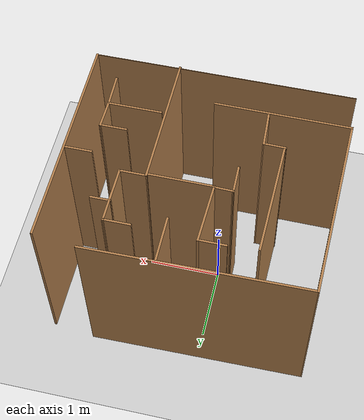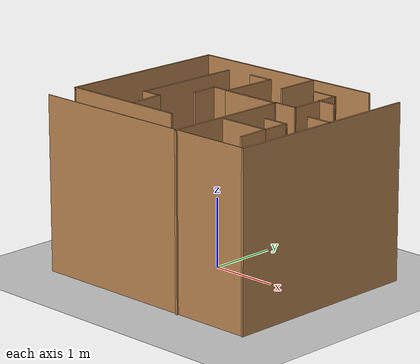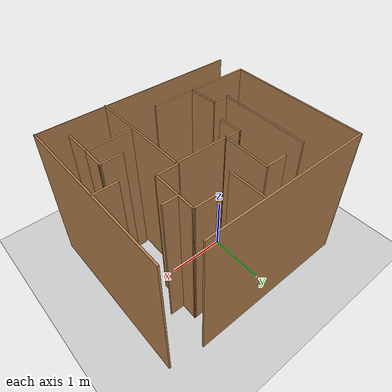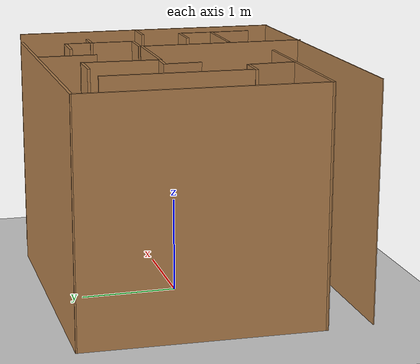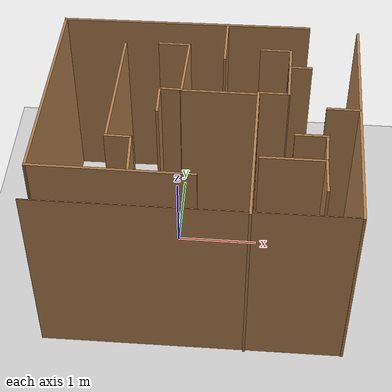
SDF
<sdf version="1.7">
 <world name="default">
  <light name="sun" type="directional">
   <pose>0 0 10 0 -0 0</pose>
   <diffuse>0.8 0.8 0.8 1</diffuse>
   <specular>0.2 0.2 0.2 1</specular>
   <attenuation>
    <range>1000</range>
    <constant>0.9</constant>
    <linear>0.01</linear>
    <quadratic>0.001</quadratic>
   </attenuation>
   <direction>-0.5 0.1 -0.9</direction>
   <spot><inner_angle>0</inner_angle><outer_angle>0</outer_angle><falloff>0</falloff></spot>
  </light>
  <model name="ground_plane">
   <static>1</static>
   <link name="link">
    <collision name="collision">
     <geometry><plane><normal>0 0 1</normal><size>100 100</size></plane></geometry>
     <surface>
      <contact><collide_bitmask>65535</collide_bitmask></contact>
      <friction><ode><mu>100</mu><mu2>50</mu2></ode></friction>
     </surface>
    </collision>
    <visual name="visual">
     <cast_shadows>0</cast_shadows>
     <geometry><plane><normal>0 0 1</normal><size>100 100</size></plane></geometry>
     <material>
      <script><uri>file://media/materials/scripts/gazebo.material</uri><name>Gazebo/Grey</name></script>
     </material>
    </visual>
   </link>
  </model>
  <gravity>0 0 -9.8</gravity>
  <magnetic_field>6e-06 2.3e-05 -4.2e-05</magnetic_field>
  <atmosphere type="adiabatic"/>
  <physics type="ode">
   <max_step_size>0.001</max_step_size>
   <real_time_factor>1</real_time_factor>
   <real_time_update_rate>1000</real_time_update_rate>
  </physics>
  <scene><ambient>0.4 0.4 0.4 1</ambient><background>0.7 0.7 0.7 1</background><shadows>1</shadows></scene>
  <spherical_coordinates>
   <surface_model>EARTH_WGS84</surface_model>
   <latitude_deg>0</latitude_deg>
   <longitude_deg>0</longitude_deg>
   <elevation>0</elevation>
   <heading_deg>0</heading_deg>
  </spherical_coordinates>
  <model name="Untitled">
   <pose>0.290726 -0.164941 0 0 -0 0</pose>
   <link name="Wall_10">
    <collision name="Wall_10_Collision">
     <geometry><box><size>0.38 0.03 2.5</size></box></geometry>
     <pose>0 0 1.25 0 -0 0</pose>
    </collision>
    <visual name="Wall_10_Visual">
     <pose>0 0 1.25 0 -0 0</pose>
     <geometry><box><size>0.38 0.03 2.5</size></box></geometry>
     <material>
      <script><uri>file://media/materials/scripts/gazebo.material</uri><name>Gazebo/Wood</name></script>
      <ambient>1 1 1 1</ambient>
     </material>
     <meta><layer>0</layer></meta>
    </visual>
    <pose>0.824274 0.314941 0 0 -0 0</pose>
   </link>
   <link name="Wall_12">
    <collision name="Wall_12_Collision">
     <geometry><box><size>0.790066 0.03 2.5</size></box></geometry>
     <pose>0 0 1.25 0 -0 0</pose>
    </collision>
    <visual name="Wall_12_Visual">
     <pose>0 0 1.25 0 -0 0</pose>
     <geometry><box><size>0.790066 0.03 2.5</size></box></geometry>
     <material>
      <script><uri>file://media/materials/scripts/gazebo.material</uri><name>Gazebo/Wood</name></script>
      <ambient>1 1 1 1</ambient>
     </material>
     <meta><layer>0</layer></meta>
    </visual>
    <pose>1.00427 0.694941 0 0 -0 1.55764</pose>
   </link>
   <link name="Wall_13">
    <collision name="Wall_13_Collision">
     <geometry><box><size>0.38 0.03 2.5</size></box></geometry>
     <pose>0 0 1.25 0 -0 0</pose>
    </collision>
    <visual name="Wall_13_Visual">
     <pose>0 0 1.25 0 -0 0</pose>
     <geometry><box><size>0.38 0.03 2.5</size></box></geometry>
     <material>
      <script><uri>file://media/materials/scripts/gazebo.material</uri><name>Gazebo/Wood</name></script>
      <ambient>1 1 1 1</ambient>
     </material>
     <meta><layer>0</layer></meta>
    </visual>
    <pose>0.834274 1.07494 0 0 -0 3.14159</pose>
   </link>
   <link name="Wall_16">
    <collision name="Wall_16_Collision">
     <geometry><box><size>0.28 0.03 2.5</size></box></geometry>
     <pose>0 0 1.25 0 -0 0</pose>
    </collision>
    <visual name="Wall_16_Visual">
     <pose>0 0 1.25 0 -0 0</pose>
     <geometry><box><size>0.28 0.03 2.5</size></box></geometry>
     <material>
      <script><uri>file://media/materials/scripts/gazebo.material</uri><name>Gazebo/Wood</name></script>
      <ambient>1 1 1 1</ambient>
     </material>
     <meta><layer>0</layer></meta>
    </visual>
    <pose>1.12427 0.784941 0 0 -0 0</pose>
   </link>
   <link name="Wall_18">
    <collision name="Wall_18_Collision">
     <geometry><box><size>3.01027 0.03 2.5</size></box></geometry>
     <pose>0 0 1.25 0 -0 0</pose>
    </collision>
    <visual name="Wall_18_Visual">
     <pose>0 0 1.25 0 -0 0</pose>
     <geometry><box><size>3.01027 0.03 2.5</size></box></geometry>
     <material>
      <script><uri>file://media/materials/scripts/gazebo.material</uri><name>Gazebo/Wood</name></script>
      <ambient>1 1 1 1</ambient>
     </material>
     <meta><layer>0</layer></meta>
    </visual>
    <pose>-0.270726 1.50494 0 0 -0 -3.12817</pose>
   </link>
   <link name="Wall_19">
    <collision name="Wall_19_Collision">
     <geometry><box><size>2.52786 0.03 2.5</size></box></geometry>
     <pose>0 0 1.25 0 -0 0</pose>
    </collision>
    <visual name="Wall_19_Visual">
     <pose>0 0 1.25 0 -0 0</pose>
     <geometry><box><size>2.52786 0.03 2.5</size></box></geometry>
     <material>
      <script><uri>file://media/materials/scripts/gazebo.material</uri><name>Gazebo/Wood</name></script>
      <ambient>1 1 1 1</ambient>
     </material>
     <meta><layer>0</layer></meta>
    </visual>
    <pose>-1.78486 0.236245 0 0 -0 -1.59012</pose>
   </link>
   <link name="Wall_20">
    <collision name="Wall_20_Collision">
     <geometry><box><size>1.87366 0.03 2.5</size></box></geometry>
     <pose>0 0 1.25 0 -0 0</pose>
    </collision>
    <visual name="Wall_20_Visual">
     <pose>0 0 1.25 0 -0 0</pose>
     <geometry><box><size>1.87366 0.03 2.5</size></box></geometry>
     <material>
      <script><uri>file://media/materials/scripts/gazebo.material</uri><name>Gazebo/Wood</name></script>
      <ambient>1 1 1 1</ambient>
     </material>
     <meta><layer>0</layer></meta>
    </visual>
    <pose>-0.887248 -1.0168 0 0 -0 -0.004717</pose>
   </link>
   <link name="Wall_22">
    <collision name="Wall_22_Collision">
     <geometry><box><size>0.526772 0.03 2.5</size></box></geometry>
     <pose>0 0 1.25 0 -0 0</pose>
    </collision>
    <visual name="Wall_22_Visual">
     <pose>0 0 1.25 0 -0 0</pose>
     <geometry><box><size>0.526772 0.03 2.5</size></box></geometry>
     <material>
      <script><uri>file://media/materials/scripts/gazebo.material</uri><name>Gazebo/Wood</name></script>
      <ambient>1 1 1 1</ambient>
     </material>
     <meta><layer>0</layer></meta>
    </visual>
    <pose>-0.708987 -0.755711 0 0 -0 1.62333</pose>
   </link>
   <link name="Wall_23">
    <collision name="Wall_23_Collision">
     <geometry><box><size>0.308307 0.03 2.5</size></box></geometry>
     <pose>0 0 1.25 0 -0 0</pose>
    </collision>
    <visual name="Wall_23_Visual">
     <pose>0 0 1.25 0 -0 0</pose>
     <geometry><box><size>0.308307 0.03 2.5</size></box></geometry>
     <material>
      <script><uri>file://media/materials/scripts/gazebo.material</uri><name>Gazebo/Wood</name></script>
      <ambient>1 1 1 1</ambient>
     </material>
     <meta><layer>0</layer></meta>
    </visual>
    <pose>-0.869856 -0.505125 0 0 -0 3.12331</pose>
   </link>
   <link name="Wall_24">
    <collision name="Wall_24_Collision">
     <geometry><box><size>1.60413 0.03 2.5</size></box></geometry>
     <pose>0 0 1.25 0 -0 0</pose>
    </collision>
    <visual name="Wall_24_Visual">
     <pose>0 0 1.25 0 -0 0</pose>
     <geometry><box><size>1.60413 0.03 2.5</size></box></geometry>
     <material>
      <script><uri>file://media/materials/scripts/gazebo.material</uri><name>Gazebo/Wood</name></script>
      <ambient>1 1 1 1</ambient>
     </material>
     <meta><layer>0</layer></meta>
    </visual>
    <pose>-0.987248 0.284375 0 0 -0 1.55422</pose>
   </link>
   <link name="Wall_26">
    <collision name="Wall_26_Collision">
     <geometry><box><size>0.75 0.03 2.5</size></box></geometry>
     <pose>0 0 1.25 0 -0 0</pose>
    </collision>
    <visual name="Wall_26_Visual">
     <pose>0 0 1.25 0 -0 0</pose>
     <geometry><box><size>0.75 0.03 2.5</size></box></geometry>
     <material>
      <script><uri>file://media/materials/scripts/gazebo.material</uri><name>Gazebo/Wood</name></script>
      <ambient>1 1 1 1</ambient>
     </material>
     <meta><layer>0</layer></meta>
    </visual>
    <pose>1.06927 -0.715059 0 0 -0 0</pose>
   </link>
   <link name="Wall_27">
    <collision name="Wall_27_Collision">
     <geometry><box><size>0.465322 0.03 2.5</size></box></geometry>
     <pose>0 0 1.25 0 -0 0</pose>
    </collision>
    <visual name="Wall_27_Visual">
     <pose>0 0 1.25 0 -0 0</pose>
     <geometry><box><size>0.465322 0.03 2.5</size></box></geometry>
     <material>
      <script><uri>file://media/materials/scripts/gazebo.material</uri><name>Gazebo/Wood</name></script>
      <ambient>1 1 1 1</ambient>
     </material>
     <meta><layer>0</layer></meta>
    </visual>
    <pose>1.43406 -0.932668 0 0 -0 -1.54882</pose>
   </link>
   <link name="Wall_29">
    <collision name="Wall_29_Collision">
     <geometry><box><size>0.406209 0.03 2.5</size></box></geometry>
     <pose>0 0 1.25 0 -0 0</pose>
    </collision>
    <visual name="Wall_29_Visual">
     <pose>0 0 1.25 0 -0 0</pose>
     <geometry><box><size>0.406209 0.03 2.5</size></box></geometry>
     <material>
      <script><uri>file://media/materials/scripts/gazebo.material</uri><name>Gazebo/Wood</name></script>
      <ambient>1 1 1 1</ambient>
     </material>
     <meta><layer>0</layer></meta>
    </visual>
    <pose>1.43427 -0.527059 0 0 -0 1.54421</pose>
   </link>
   <link name="Wall_32">
    <collision name="Wall_32_Collision">
     <geometry><box><size>0.39 0.03 2.5</size></box></geometry>
     <pose>0 0 1.25 0 -0 0</pose>
    </collision>
    <visual name="Wall_32_Visual">
     <pose>0 0 1.25 0 -0 0</pose>
     <geometry><box><size>0.39 0.03 2.5</size></box></geometry>
     <material>
      <script><uri>file://media/materials/scripts/gazebo.material</uri><name>Gazebo/Wood</name></script>
      <ambient>1 1 1 1</ambient>
     </material>
     <meta><layer>0</layer></meta>
    </visual>
    <pose>1.61927 0.104941 0 0 -0 3.14159</pose>
   </link>
   <link name="Wall_34">
    <collision name="Wall_34_Collision">
     <geometry><box><size>0.63 0.03 2.5</size></box></geometry>
     <pose>0 0 1.25 0 -0 0</pose>
    </collision>
    <visual name="Wall_34_Visual">
     <pose>0 0 1.25 0 -0 0</pose>
     <geometry><box><size>0.63 0.03 2.5</size></box></geometry>
     <material>
      <script><uri>file://media/materials/scripts/gazebo.material</uri><name>Gazebo/Wood</name></script>
      <ambient>1 1 1 1</ambient>
     </material>
     <meta><layer>0</layer></meta>
    </visual>
    <pose>0.229274 1.18494 0 0 -0 -1.5708</pose>
   </link>
   <link name="Wall_36">
    <collision name="Wall_36_Collision">
     <geometry><box><size>0.38 0.03 2.5</size></box></geometry>
     <pose>0 0 1.25 0 -0 0</pose>
    </collision>
    <visual name="Wall_36_Visual">
     <pose>0 0 1.25 0 -0 0</pose>
     <geometry><box><size>0.38 0.03 2.5</size></box></geometry>
     <material>
      <script><uri>file://media/materials/scripts/gazebo.material</uri><name>Gazebo/Wood</name></script>
      <ambient>1 1 1 1</ambient>
     </material>
     <meta><layer>0</layer></meta>
    </visual>
    <pose>-0.389639 1.10624 0 0 -0 0</pose>
   </link>
   <link name="Wall_37">
    <collision name="Wall_37_Collision">
     <geometry><box><size>0.83654 0.03 2.5</size></box></geometry>
     <pose>0 0 1.25 0 -0 0</pose>
    </collision>
    <visual name="Wall_37_Visual">
     <pose>0 0 1.25 0 -0 0</pose>
     <geometry><box><size>0.83654 0.03 2.5</size></box></geometry>
     <material>
      <script><uri>file://media/materials/scripts/gazebo.material</uri><name>Gazebo/Wood</name></script>
      <ambient>1 1 1 1</ambient>
     </material>
     <meta><layer>0</layer></meta>
    </visual>
    <pose>-0.220509 0.703419 0 0 -0 -1.60694</pose>
   </link>
   <link name="Wall_38">
    <collision name="Wall_38_Collision">
     <geometry><box><size>0.281743 0.03 2.5</size></box></geometry>
     <pose>0 0 1.25 0 -0 0</pose>
    </collision>
    <visual name="Wall_38_Visual">
     <pose>0 0 1.25 0 -0 0</pose>
     <geometry><box><size>0.281743 0.03 2.5</size></box></geometry>
     <material>
      <script><uri>file://media/materials/scripts/gazebo.material</uri><name>Gazebo/Wood</name></script>
      <ambient>1 1 1 1</ambient>
     </material>
     <meta><layer>0</layer></meta>
    </visual>
    <pose>-0.352195 0.304297 0 0 -0 3.11216</pose>
   </link>
   <link name="Wall_39">
    <collision name="Wall_39_Collision">
     <geometry><box><size>0.403056 0.03 2.5</size></box></geometry>
     <pose>0 0 1.25 0 -0 0</pose>
    </collision>
    <visual name="Wall_39_Visual">
     <pose>0 0 1.25 0 -0 0</pose>
     <geometry><box><size>0.403056 0.03 2.5</size></box></geometry>
     <material>
      <script><uri>file://media/materials/scripts/gazebo.material</uri><name>Gazebo/Wood</name></script>
      <ambient>1 1 1 1</ambient>
     </material>
     <meta><layer>0</layer></meta>
    </visual>
    <pose>-0.48263 0.121688 0 0 -0 -1.54891</pose>
   </link>
   <link name="Wall_41">
    <collision name="Wall_41_Collision">
     <geometry><box><size>0.91 0.03 2.5</size></box></geometry>
     <pose>0 0 1.25 0 -0 0</pose>
    </collision>
    <visual name="Wall_41_Visual">
     <pose>0 0 1.25 0 -0 0</pose>
     <geometry><box><size>0.91 0.03 2.5</size></box></geometry>
     <material>
      <script><uri>file://media/materials/scripts/gazebo.material</uri><name>Gazebo/Wood</name></script>
      <ambient>1 1 1 1</ambient>
     </material>
     <meta><layer>0</layer></meta>
    </visual>
    <pose>0.210578 0.290158 0 0 -0 0</pose>
   </link>
   <link name="Wall_44">
    <collision name="Wall_44_Collision">
     <geometry><box><size>0.380435 0.03 2.5</size></box></geometry>
     <pose>0 0 1.25 0 -0 0</pose>
    </collision>
    <visual name="Wall_44_Visual">
     <pose>0 0 1.25 0 -0 0</pose>
     <geometry><box><size>0.380435 0.03 2.5</size></box></geometry>
     <material>
      <script><uri>file://media/materials/scripts/gazebo.material</uri><name>Gazebo/Wood</name></script>
      <ambient>1 1 1 1</ambient>
     </material>
     <meta><layer>0</layer></meta>
    </visual>
    <pose>1.26427 -0.339059 0 0 -0 3.14159</pose>
   </link>
   <link name="Wall_6">
    <collision name="Wall_6_Collision">
     <geometry><box><size>3.61 0.01 2.5</size></box></geometry>
     <pose>0 0 1.25 0 -0 0</pose>
    </collision>
    <visual name="Wall_6_Visual">
     <pose>0 0 1.25 0 -0 0</pose>
     <geometry><box><size>3.61 0.01 2.5</size></box></geometry>
     <material>
      <script><uri>file://media/materials/scripts/gazebo.material</uri><name>Gazebo/Wood</name></script>
      <ambient>1 1 1 1</ambient>
     </material>
     <meta><layer>0</layer></meta>
    </visual>
    <pose>0.009274 -1.51056 0 0 -0 0.0025</pose>
   </link>
   <link name="Wall_7">
    <collision name="Wall_7_Collision">
     <geometry><box><size>2.9897 0.03 2.5</size></box></geometry>
     <pose>0 0 1.25 0 -0 0</pose>
    </collision>
    <visual name="Wall_7_Visual">
     <pose>0 0 1.25 0 -0 0</pose>
     <geometry><box><size>2.9897 0.03 2.5</size></box></geometry>
     <material>
      <script><uri>file://media/materials/scripts/gazebo.material</uri><name>Gazebo/Wood</name></script>
      <ambient>1 1 1 1</ambient>
     </material>
     <meta><layer>0</layer></meta>
    </visual>
    <pose>1.80927 -0.026059 0 0 -0 1.5708</pose>
   </link>
   <link name="Wall_9">
    <collision name="Wall_9_Collision">
     <geometry><box><size>1.87003 0.03 2.5</size></box></geometry>
     <pose>0 0 1.25 0 -0 0</pose>
    </collision>
    <visual name="Wall_9_Visual">
     <pose>0 0 1.25 0 -0 0</pose>
     <geometry><box><size>1.87003 0.03 2.5</size></box></geometry>
     <material>
      <script><uri>file://media/materials/scripts/gazebo.material</uri><name>Gazebo/Wood</name></script>
      <ambient>1 1 1 1</ambient>
     </material>
     <meta><layer>0</layer></meta>
    </visual>
    <pose>0.644274 -0.605059 0 0 -0 1.56536</pose>
   </link>
   <static>1</static>
  </model>
 </world>
</sdf>
